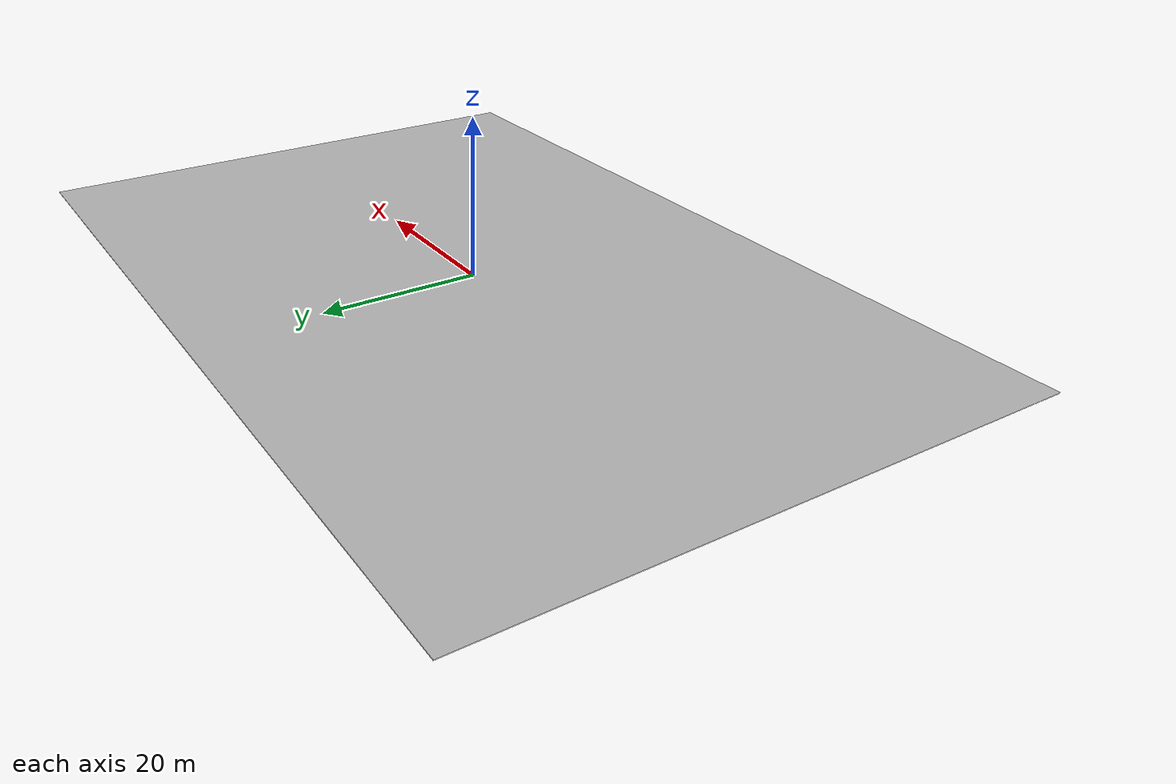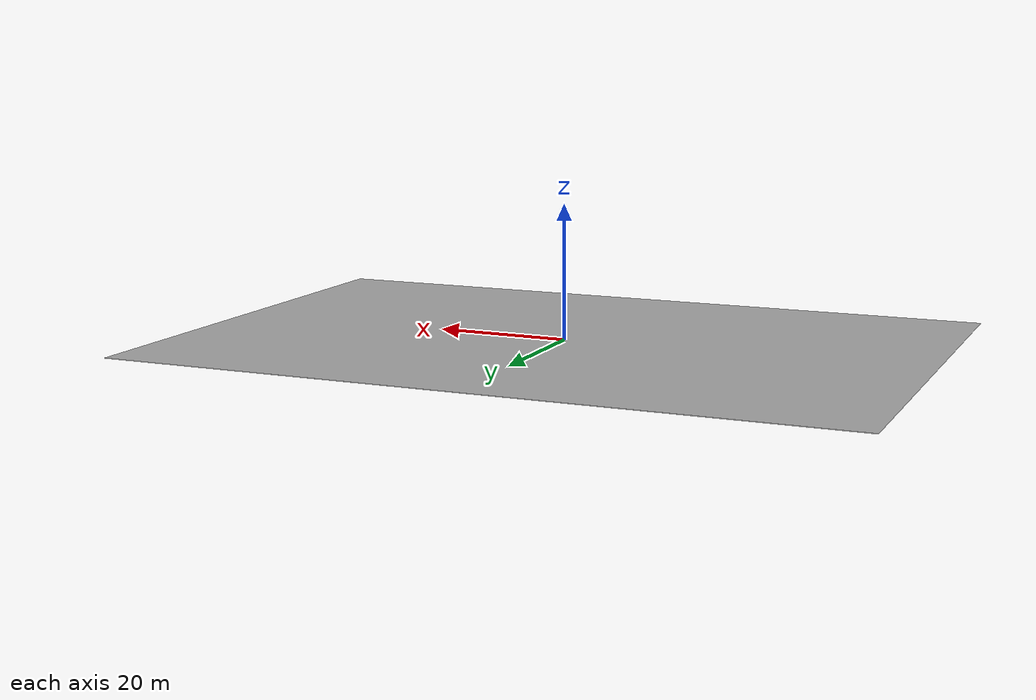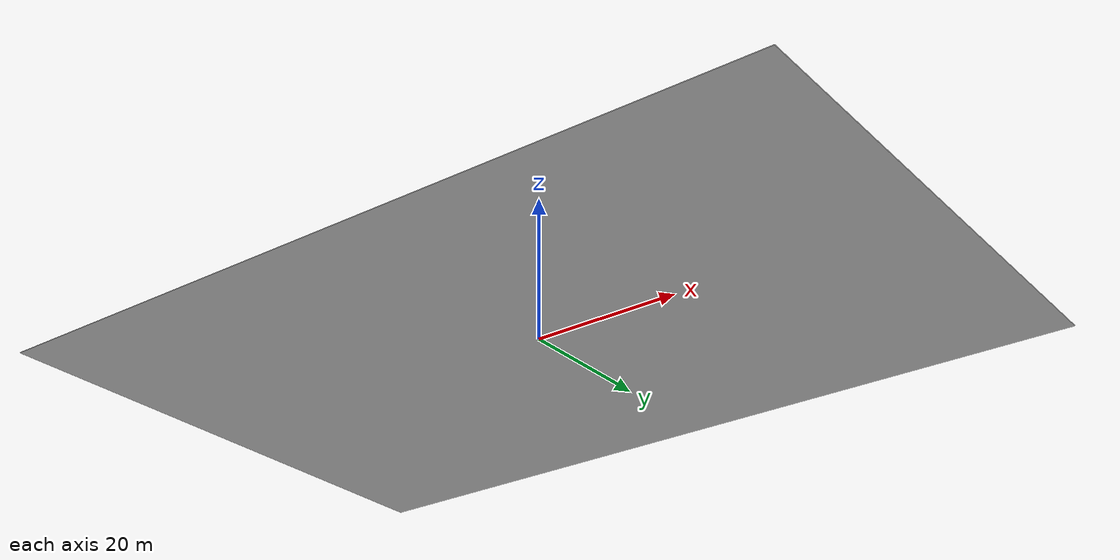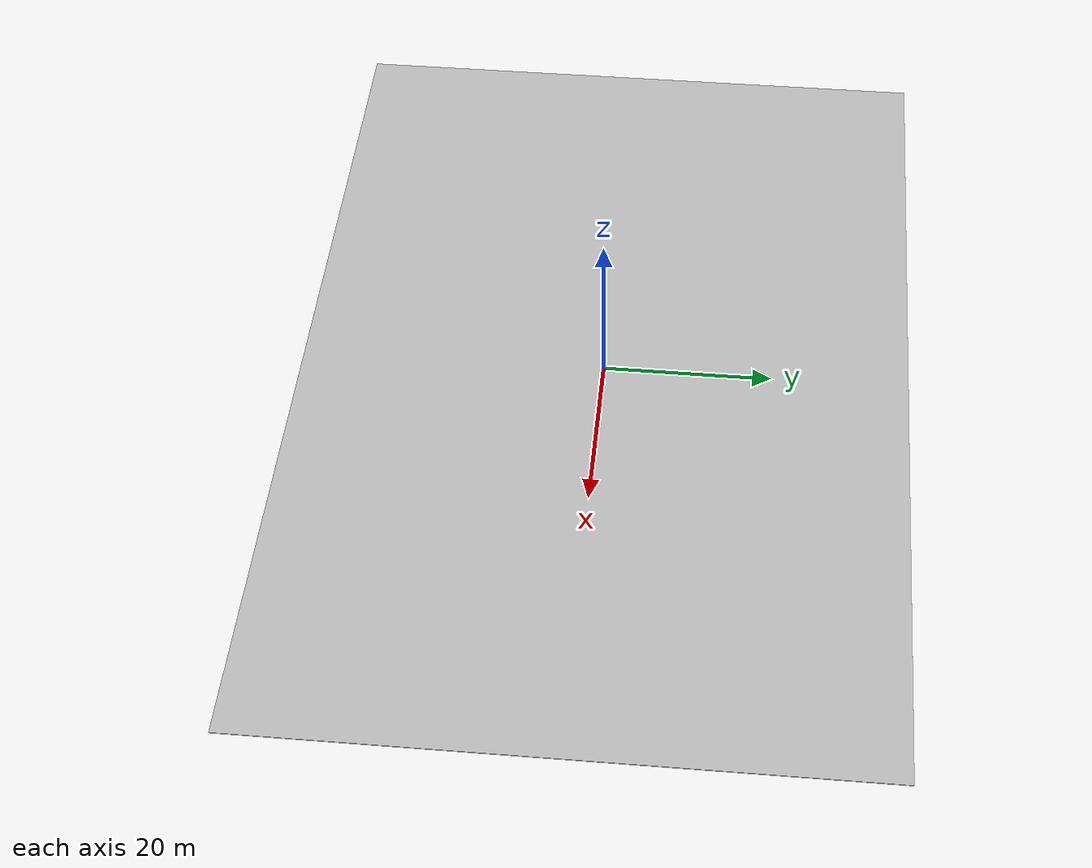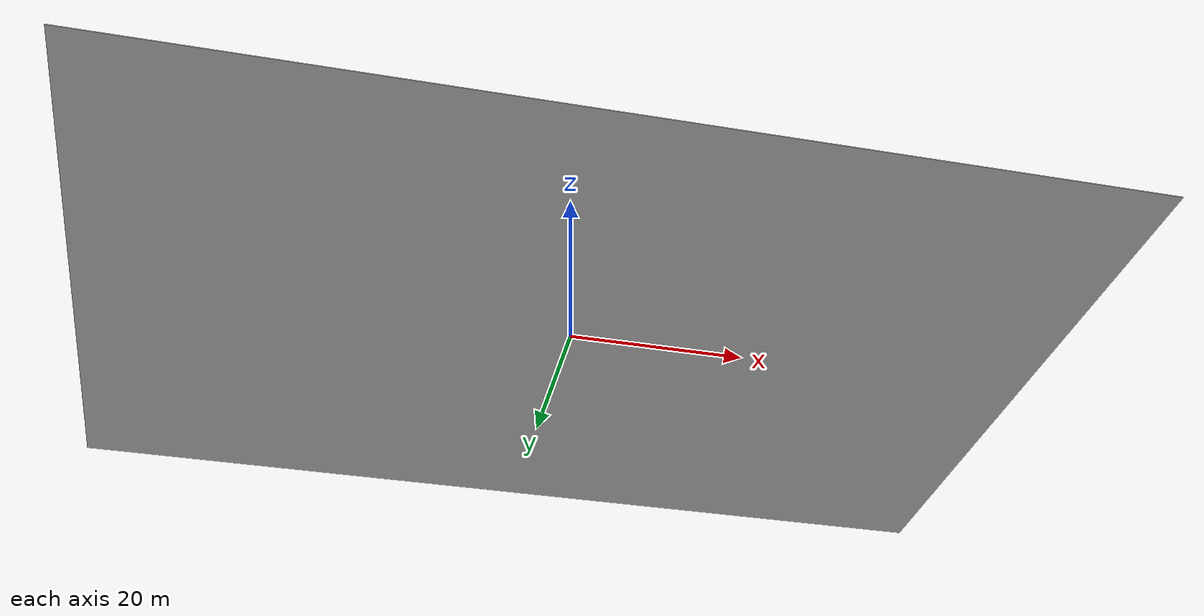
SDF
<?xml version="1.0" ?>
<sdf version="1.4">
  <model name="arena_pathless">
    <static>true</static>
    <link name="link_arena">
      <pose>0 0 -0.04 0 0 1.5708</pose>
      <collision name="collision">
        <geometry>
          <box>
            <size>72.63 108.945 .1</size>
          </box>
        </geometry>
      </collision>
      <visual name="visual">
        <transparency>0.0001</transparency>
        <cast_shadows>false</cast_shadows>
        <geometry>
          <box>
            <size>72.63 108.945 .1</size>
          </box>
        </geometry>
        <material>
          <script>
            <uri>model://arena_pathless/materials/scripts</uri>
            <uri>model://arena_pathless/materials/textures</uri>
            <name>vrc/arena_pathless</name>
          </script>
        </material>
      </visual>
    </link>

    <static>true</static>
    <link name="link_asphalt">
      <pose>0 0 -0.04 0 0 1.5708</pose>
      <collision name="collision">
        <geometry>
          <box>
            <size>72.63 108.945 .1</size>
          </box>
        </geometry>
      </collision>
      <visual name="visual">
        <cast_shadows>false</cast_shadows>
        <geometry>
          <box>
            <size>72.63 108.945 .1</size>
          </box>
        </geometry>
        <material>
          <script>
            <uri>model://arena_pathless/materials/scripts</uri>
            <uri>model://arena_pathless/materials/textures</uri>
            <name>vrc/asphalt</name>
          </script>
        </material>
      </visual>
    </link>
  </model>
</sdf>
